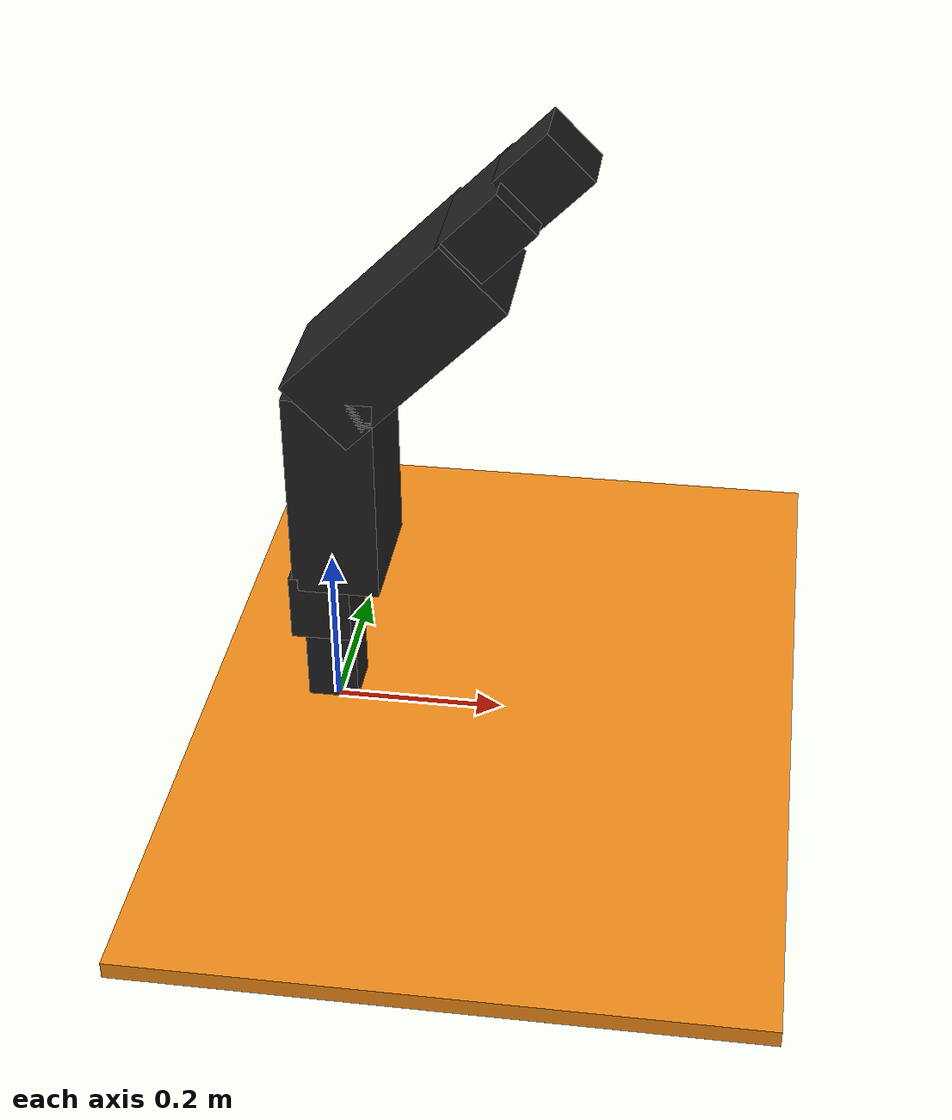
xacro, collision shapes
<?xml version="1.0"?>
<!-- Revolute-Revolute Manipulator -->
<robot name="robotis_manipulator_h" xmlns:xacro="http://www.ros.org/wiki/xacro">

  <!-- some parameters -->
  <xacro:property name="pi" value="3.141592654" />

  <!-- Import all Gazebo-customization elements, including Gazebo colors -->
  <xacro:include filename="$(find manipulator_h_description)/urdf/manipulator_h.gazebo" />
  <!-- Import Rviz colors -->
  <xacro:include filename="$(find manipulator_h_description)/urdf/materials.xacro" />

  <!-- Used for fixing robot to Gazebo 'link 1' -->
  <link name="world">
  </link>

  <joint name="world_fixed" type="fixed">
    <parent link="world"/>
    <child link="base"/>
  </joint>

  <link name="base">
    <collision>
      <origin xyz="0.2 0 0.01" rpy="0 0 0"/>
      <geometry>
	<box size="0.7 1.0 0.02"/>
      </geometry>
    </collision>

    <visual>
      <origin xyz="0.2 0 0.01" rpy="0 0 0"/>
      <geometry>
	<box size="0.7 1.0 0.02"/>
      </geometry>
      <material name="orange"/>
    </visual>

    <inertial>
      <origin xyz="0 0 0" rpy="0 0 0"/>
      <mass value="10.0"/>
      <inertia
	  ixx="1.0" ixy="0.0" ixz="0.0"
	  iyy="1.0" iyz="0.0"
	  izz="1.0"/>
    </inertial>
  </link>

  <joint name="base_fixed" type="fixed">
    <parent link="base"/>
    <child link="link1"/>
    <origin xyz="0 0 0.02" rpy="0 0 0"/>
  </joint>

  <!-- link 1 -->
  <link name="link1">
    <collision>
      <origin xyz="0 0 0.063" rpy="0 0 ${pi}"/>
      <geometry>
	<box size="0.06 0.06 0.126"/>
      </geometry>
    </collision>

    <visual>
      <origin xyz="0 0 0" rpy="0 0 ${pi}"/>
      <geometry>
        <mesh filename="package://manipulator_h_description/meshes/link_1.stl" scale="0.001 0.001 0.001"/>
      </geometry>
      <material name="black"/>
    </visual>

    <inertial>
      <origin xyz="0 0 0" rpy="0 0 0"/>
      <mass value="0.936"/>
      <inertia
	  ixx="1.0" ixy="0.0" ixz="0.0"
	  iyy="1.0" iyz="0.0"
	  izz="1.0"/>
    </inertial>
  </link>

  <!-- Joint 1 -->
  <joint name="joint1" type="revolute">
    <parent link="link1"/>
    <child link="link2"/>
    <origin xyz="0 0 0.126" rpy="0 0 0"/>
    <axis xyz="0 0 1"/>
    <limit velocity="6.5" effort="1000" lower="${-pi*0.6}" upper="${pi*0.6}" />
    <dynamics damping="0.7"/>
  </joint>

  <transmission name="tran1">
    <type>transmission_interface/SimpleTransmission</type>
    <joint name="joint1">
      <hardwareInterface>EffortJointInterface</hardwareInterface>
    </joint>
    <actuator name="motor1">
      <hardwareInterface>EffortJointInterface</hardwareInterface>
      <mechanicalReduction>1</mechanicalReduction>
    </actuator>
  </transmission>

  <!-- link 2 -->
  <link name="link2">
    <collision>
      <origin xyz="0 0 0.033" rpy="0 0 ${pi}"/>
      <geometry>
	<box size="0.07 0.15 0.08"/>
      </geometry>
    </collision>

    <visual>
      <origin xyz="0 0 -0.126" rpy="0 0 ${pi}"/>
      <geometry>
        <mesh filename="package://manipulator_h_description/meshes/link_2.stl" scale="0.001 0.001 0.001"/>
      </geometry>
      <material name="black"/>
    </visual>

    <inertial>
      <origin xyz="0 0 0" rpy="0 0 0"/>
      <mass value="1.030"/>
      <inertia
	  ixx="1.0" ixy="0.0" ixz="0.0"
	  iyy="1.0" iyz="0.0"
	  izz="1.0"/>
    </inertial>
  </link>

  <!-- Joint 2 -->
  <joint name="joint2" type="revolute">
    <parent link="link2"/>
    <child link="link3"/>
    <origin xyz="0 0 0.033" rpy="0 0 0"/>
    <axis xyz="0 1 0"/>
    <limit velocity="6.5" effort="1000" lower="${-pi*0.45}" upper="${pi*0.45}" />
    <dynamics damping="0.7"/>
  </joint>

  <transmission name="tran2">
    <type>transmission_interface/SimpleTransmission</type>
    <joint name="joint2">
      <hardwareInterface>EffortJointInterface</hardwareInterface>
    </joint>
    <actuator name="motor2">
      <hardwareInterface>EffortJointInterface</hardwareInterface>
      <mechanicalReduction>1</mechanicalReduction>
    </actuator>
  </transmission>

  <!-- link 3 -->
  <link name="link3">
    <collision>
      <origin xyz="0.02 0 0.15" rpy="0 0 ${pi}"/>
      <geometry>
	<box size="0.1 0.15 0.25"/>
      </geometry>
    </collision>

    <visual>
      <origin xyz="0 0 -0.159" rpy="0 0 ${pi}"/>
      <geometry>
        <mesh filename="package://manipulator_h_description/meshes/link_3.stl" scale="0.001 0.001 0.001"/>
      </geometry>
      <material name="black"/>
    </visual>

    <inertial>
      <origin xyz="0 0 0" rpy="0 0 0"/>
      <mass value="1.404"/>
      <inertia
	  ixx="1.0" ixy="0.0" ixz="0.0"
	  iyy="1.0" iyz="0.0"
	  izz="1.0"/>
    </inertial>
  </link>

  <!-- Joint 3 -->
  <joint name="joint3" type="revolute">
    <parent link="link3"/>
    <child link="link4"/>
    <origin xyz="0.03 0.0 0.264" rpy="0 ${45.0*pi/180.0} 0" />
    <axis xyz="0 1 0"/>
    <limit velocity="6.5" effort="1000" lower="${-pi*0.7}" upper="${pi*0.45}" />
    <dynamics damping="0.7"/>
  </joint>

  <transmission name="tran3">
    <type>transmission_interface/SimpleTransmission</type>
    <joint name="joint3">
      <hardwareInterface>EffortJointInterface</hardwareInterface>
    </joint>
    <actuator name="motor3">
      <hardwareInterface>EffortJointInterface</hardwareInterface>
      <mechanicalReduction>1</mechanicalReduction>
    </actuator>
  </transmission>

  <!-- link 4 -->
  <link name="link4">
    <collision>
      <origin xyz="-0.01 0.0 0.1" rpy="0 0 ${pi}" />
      <geometry>
	<box size="0.1 0.15 0.25" />
      </geometry>
    </collision>

    <visual>
      <origin xyz="-0.03 0 -0.423" rpy="0 0 ${pi}" />
      <geometry>
        <mesh filename="package://manipulator_h_description/meshes/link_4.stl" scale="0.001 0.001 0.001"/>
      </geometry>
      <material name="black"/>
    </visual>

    <inertial>
      <origin xyz="0 0 0" rpy="0 0 0" />
      <mass value="1.236" />
      <inertia
	  ixx="1.0" ixy="0.0" ixz="0.0"
	  iyy="1.0" iyz="0.0"
	  izz="1.0"/>
    </inertial>
  </link>

  <!-- Joint 4 -->
  <joint name="joint4" type="revolute">
    <parent link="link4"/>
    <child link="link5"/>
    <origin xyz="-0.03 0.0 0.231" rpy="0 0 0" />
    <axis xyz="0 0 1" />
    <limit velocity="6.5" effort="1000" lower="${-pi*0.6}" upper="${pi*0.6}" />
    <dynamics damping="0.7"/>
  </joint>

  <transmission name="tran4">
    <type>transmission_interface/SimpleTransmission</type>
    <joint name="joint4">
      <hardwareInterface>EffortJointInterface</hardwareInterface>
    </joint>
    <actuator name="motor4">
      <hardwareInterface>EffortJointInterface</hardwareInterface>
      <mechanicalReduction>1</mechanicalReduction>
    </actuator>
  </transmission>

  <!-- link 5 -->
  <link name="link5">
    <collision>
      <origin xyz="0.0 0.0 0.03" rpy="0 0 ${pi}" />
      <geometry>
	<box size="0.06 0.13 0.09" />
      </geometry>
    </collision>

    <visual>
      <origin xyz="0 0 -0.654" rpy="0 0 ${pi}" />
      <geometry>
        <mesh filename="package://manipulator_h_description/meshes/link_5.stl" scale="0.001 0.001 0.001"/>
      </geometry>
      <material name="black"/>
    </visual>

    <inertial>
      <origin xyz="0 0 0" rpy="0 0 0" />
      <mass value="0.491" />
      <inertia
	  ixx="1.0" ixy="0.0" ixz="0.0"
	  iyy="1.0" iyz="0.0"
	  izz="1.0"/>
    </inertial>
  </link>

  <!-- Joint 5 -->
  <joint name="joint5" type="revolute">
    <parent link="link5"/>
    <child link="link6"/>
    <origin xyz="0.0 0.0 0.027" rpy="0 0 0" />
    <axis xyz="0 1 0" />
    <limit velocity="6.5" effort="1000" lower="${-pi*0.45}" upper="${pi*0.45}" />
    <dynamics damping="0.7"/>
  </joint>

  <transmission name="tran5">
    <type>transmission_interface/SimpleTransmission</type>
    <joint name="joint5">
      <hardwareInterface>EffortJointInterface</hardwareInterface>
    </joint>
    <actuator name="motor5">
      <hardwareInterface>EffortJointInterface</hardwareInterface>
      <mechanicalReduction>1</mechanicalReduction>
    </actuator>
  </transmission>

  <!-- link 6 -->
  <link name="link6">
    <collision>
      <origin xyz="0.0 0.0 0.08" rpy="0 0 ${pi}" />
      <geometry>
	<box size="0.07 0.07 0.08" />
      </geometry>
    </collision>

    <visual>
      <origin xyz="0 0 -0.681" rpy="0 0 ${pi}" />
      <geometry>
        <mesh filename="package://manipulator_h_description/meshes/link_6.stl" scale="0.001 0.001 0.001"/>
      </geometry>
      <material name="black"/>
    </visual>

    <inertial>
      <origin xyz="0 0 0" rpy="0 0 0" />
      <mass value="0.454" />
      <inertia
	  ixx="1.0" ixy="0.0" ixz="0.0"
	  iyy="1.0" iyz="0.0"
	  izz="1.0"/>
    </inertial>
  </link>

  <!-- Joint 6 -->
  <joint name="joint6" type="revolute">
    <parent link="link6"/>
    <child link="end_effector"/>
    <origin xyz="0.0 0.0 0.123" rpy="0 0 0" />
    <axis xyz="0 0 1" />
    <limit velocity="6.5" effort="1000" lower="${-pi*0.6}" upper="${pi*0.6}" />
    <dynamics damping="0.7"/>
  </joint>

  <transmission name="tran6">
    <type>transmission_interface/SimpleTransmission</type>
    <joint name="joint6">
      <hardwareInterface>EffortJointInterface</hardwareInterface>
    </joint>
    <actuator name="motor6">
      <hardwareInterface>EffortJointInterface</hardwareInterface>
      <mechanicalReduction>1</mechanicalReduction>
    </actuator>
  </transmission>

  <!-- End Effector -->
  <link name="end_effector">
    <visual>
      <origin xyz="0.0 0.0 0.02" rpy="0 0 0" />
      <geometry>
        <box size="0.02 0.02 0.02" />
      </geometry>
      <material name="red"/>
    </visual>

    <inertial>
      <origin xyz="0.0 0.0 0.0" rpy="0 0 0" />
      <mass value="0.1" />
      <inertia
	  ixx="1.0" ixy="0.0" ixz="0.0"
	  iyy="1.0" iyz="0.0"
	  izz="1.0"/>
    </inertial>
  </link>

</robot>
